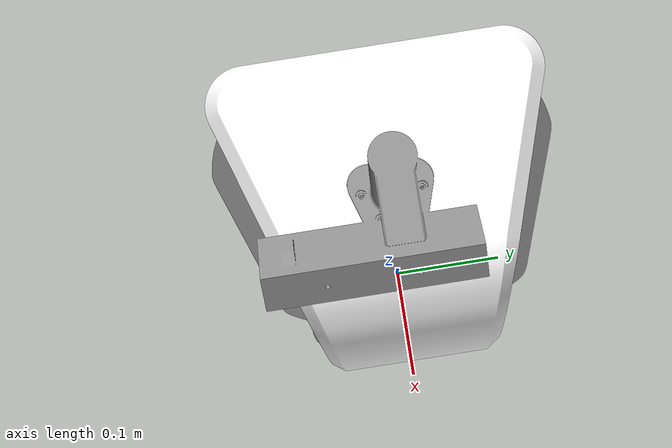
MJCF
<mujoco model="fr3_duo_mount">
  <compiler angle="radian" meshdir="assets" autolimits="true"/>

  <option cone="elliptic" impratio="10"/>

  <asset>
    <material name="metal" rgba="0.58 0.58 0.58 1"/>
    <material name="white"/>

    <mesh name="fr3_duo_head" file="fr3_duo_kit_head.obj"/>
    <mesh name="fr3_duo_mount" file="fr3_duo_mount.obj"/>
    <mesh name="fr3_duo_cover" file="fr3_duo_cover.obj"/>
    <mesh name="fr3_duo_pillar" file="fr3_duo_pillar_28cm.obj"/>
    <mesh name="fr3_duo_plate" file="fr3_duo_plate.obj"/>
    <mesh name="fr3_duo_head_coll" file="fr3_duo_kit_head.stl"/>
    <mesh name="fr3_duo_mount_coll" file="fr3_duo_mount.stl"/>
    <mesh name="fr3_duo_cover_coll" file="fr3_duo_cover.stl"/>
    <mesh name="fr3_duo_pillar_coll" file="fr3_duo_pillar_28cm.stl"/>
    <mesh name="fr3_duo_plate_coll" file="fr3_duo_plate.stl"/>
  </asset>

  <default>
    <default class="fr3_duo_mount">
      <default class="visual">
        <geom type="mesh" contype="0" conaffinity="0" group="2" material="black"/>
      </default>
      <default class="collision">
        <geom type="mesh" group="3"/>
      </default>
    </default>
  </default>

  <worldbody>
    <body name="base" childclass="fr3_duo_mount">
      <geom mesh="fr3_duo_head"  material="metal"  pos="-0.0369 0 0.459" class="visual"/>
      <geom mesh="fr3_duo_mount" material="metal"  pos="-0.0369 0 0.292" class="visual"/>
      <geom mesh="fr3_duo_cover" material="white"  pos="-0.0369 0 0.360" class="visual"/>
      <geom mesh="fr3_duo_pillar" material="metal" pos="-0.0369 0 0.152" class="visual"/>
      <geom mesh="fr3_duo_plate" material="metal"  pos="-0.0369 0 0.006" class="visual"/>
      <geom mesh="fr3_duo_head_coll"  material="metal"  pos="-0.0369 0 0.459" class="collision"/>
      <geom mesh="fr3_duo_mount_coll" material="metal"  pos="-0.0369 0 0.292" class="collision"/>
      <geom mesh="fr3_duo_cover_coll" material="white"  pos="-0.0369 0 0.360" class="collision"/>
      <geom mesh="fr3_duo_pillar_coll" material="metal" pos="-0.0369 0 0.152" class="collision"/>
      <geom mesh="fr3_duo_plate_coll" material="metal"  pos="-0.0369 0 0.006" class="collision"/>
    </body>
  </worldbody>

</mujoco>
